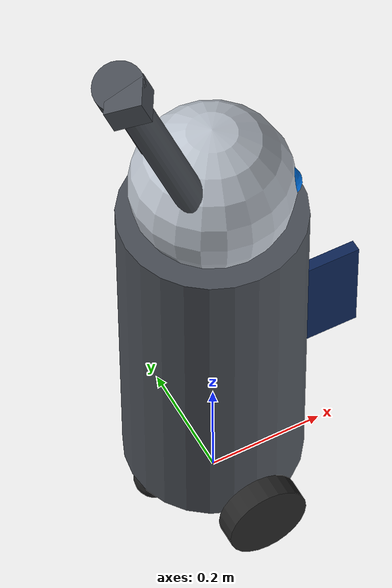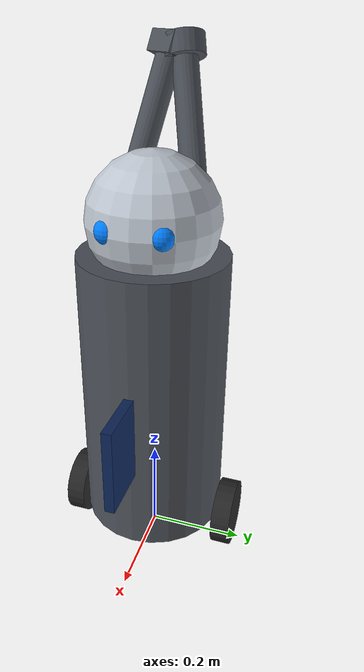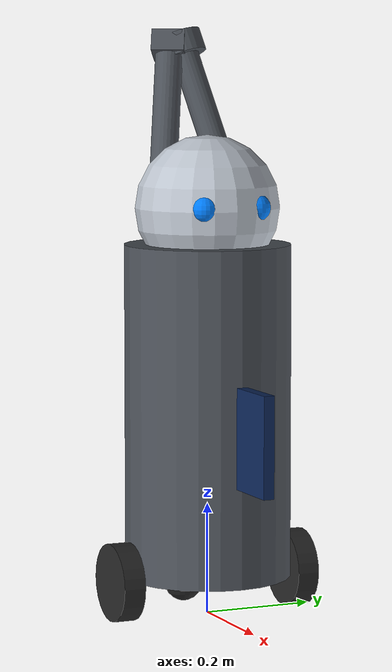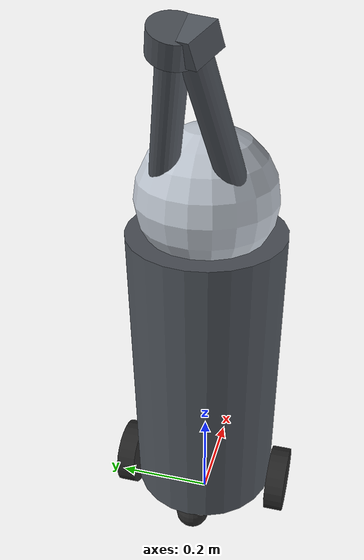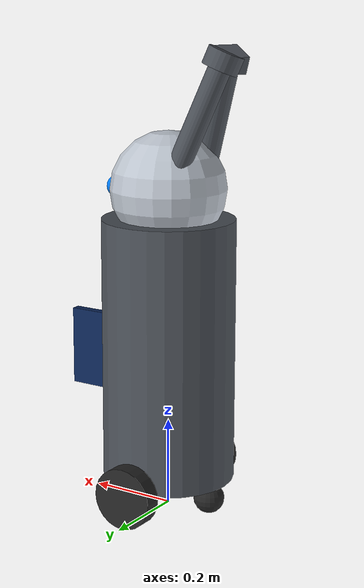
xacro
<?xml version="1.0"?>
<robot xmlns:xacro="http://www.ros.org/wiki/xacro" name="pluto">

  <!-- Constants -->
  <xacro:property name="body_radius" value="0.15"/>
  <xacro:property name="body_height" value="0.60"/>
  <xacro:property name="wheel_radius" value="0.07"/>
  <xacro:property name="wheel_width" value="0.04"/>
  <xacro:property name="wheel_separation" value="0.34"/>
  <xacro:property name="horn_length" value="0.25"/>
  <xacro:property name="horn_radius" value="0.025"/>

  <!-- Materials -->
  <material name="dark_metal">
    <color rgba="0.3 0.32 0.35 1.0"/>
  </material>
  <material name="silver_metal">
    <color rgba="0.75 0.78 0.82 1.0"/>
  </material>
  <material name="eye_default">
    <color rgba="0.0 0.5 1.0 1.0"/>
  </material>
  <material name="wheel_mat">
    <color rgba="0.15 0.15 0.15 1.0"/>
  </material>
  <material name="chest_panel">
    <color rgba="0.05 0.15 0.35 0.9"/>
  </material>

  <!-- =============================== BASE LINK =============================== -->
  <link name="base_footprint"/>

  <joint name="base_joint" type="fixed">
    <parent link="base_footprint"/>
    <child link="base_link"/>
    <origin xyz="0 0 ${wheel_radius}" rpy="0 0 0"/>
  </joint>

  <!-- Main body -->
  <link name="base_link">
    <visual>
      <origin xyz="0 0 ${body_height/2}" rpy="0 0 0"/>
      <geometry>
        <cylinder radius="${body_radius}" length="${body_height}"/>
      </geometry>
      <material name="dark_metal"/>
    </visual>
    <collision>
      <origin xyz="0 0 ${body_height/2}" rpy="0 0 0"/>
      <geometry>
        <cylinder radius="${body_radius}" length="${body_height}"/>
      </geometry>
    </collision>
    <inertial>
      <mass value="10.0"/>
      <inertia ixx="0.35" iyy="0.35" izz="0.12" ixy="0" ixz="0" iyz="0"/>
    </inertial>
  </link>

  <!-- Chest panel display -->
  <link name="chest_panel">
    <visual>
      <origin xyz="0 0 0" rpy="0 0 0"/>
      <geometry>
        <box size="0.22 0.02 0.18"/>
      </geometry>
      <material name="chest_panel"/>
    </visual>
    <inertial>
      <mass value="0.1"/>
      <inertia ixx="0.001" iyy="0.001" izz="0.001" ixy="0" ixz="0" iyz="0"/>
    </inertial>
  </link>

  <joint name="chest_panel_joint" type="fixed">
    <parent link="base_link"/>
    <child link="chest_panel"/>
    <origin xyz="${body_radius} 0 ${body_height * 0.45}" rpy="0 0 0"/>
  </joint>

  <!-- =============================== HEAD =============================== -->
  <link name="head_link">
    <visual>
      <origin xyz="0 0 0.065" rpy="0 0 0"/>
      <geometry>
        <sphere radius="0.13"/>
      </geometry>
      <material name="silver_metal"/>
    </visual>
    <collision>
      <origin xyz="0 0 0.065" rpy="0 0 0"/>
      <geometry>
        <sphere radius="0.13"/>
      </geometry>
    </collision>
    <inertial>
      <mass value="1.0"/>
      <inertia ixx="0.01" iyy="0.01" izz="0.01" ixy="0" ixz="0" iyz="0"/>
    </inertial>
  </link>

  <joint name="head_joint" type="fixed">
    <parent link="base_link"/>
    <child link="head_link"/>
    <origin xyz="0 0 ${body_height}" rpy="0 0 0"/>
  </joint>

  <!-- =============================== HORNS =============================== -->
  <!-- Left horn (LiDAR mount) -->
  <link name="left_horn">
    <visual>
      <origin xyz="0 0 ${horn_length/2}" rpy="0 0 0"/>
      <geometry>
        <cylinder radius="${horn_radius}" length="${horn_length}"/>
      </geometry>
      <material name="dark_metal"/>
    </visual>
    <collision>
      <origin xyz="0 0 ${horn_length/2}" rpy="0 0 0"/>
      <geometry>
        <cylinder radius="${horn_radius}" length="${horn_length}"/>
      </geometry>
    </collision>
    <inertial>
      <mass value="0.2"/>
      <inertia ixx="0.001" iyy="0.001" izz="0.0001" ixy="0" ixz="0" iyz="0"/>
    </inertial>
  </link>

  <joint name="left_horn_joint" type="fixed">
    <parent link="head_link"/>
    <child link="left_horn"/>
    <origin xyz="-0.06 0.06 0.12" rpy="0 ${-pi/8} ${pi/6}"/>
  </joint>

  <!-- Right horn (Camera mount) -->
  <link name="right_horn">
    <visual>
      <origin xyz="0 0 ${horn_length/2}" rpy="0 0 0"/>
      <geometry>
        <cylinder radius="${horn_radius}" length="${horn_length}"/>
      </geometry>
      <material name="dark_metal"/>
    </visual>
    <collision>
      <origin xyz="0 0 ${horn_length/2}" rpy="0 0 0"/>
      <geometry>
        <cylinder radius="${horn_radius}" length="${horn_length}"/>
      </geometry>
    </collision>
    <inertial>
      <mass value="0.2"/>
      <inertia ixx="0.001" iyy="0.001" izz="0.0001" ixy="0" ixz="0" iyz="0"/>
    </inertial>
  </link>

  <joint name="right_horn_joint" type="fixed">
    <parent link="head_link"/>
    <child link="right_horn"/>
    <origin xyz="-0.06 -0.06 0.12" rpy="0 ${-pi/8} ${-pi/6}"/>
  </joint>

  <!-- =============================== EYES =============================== -->
  <link name="left_eye">
    <visual>
      <origin xyz="0 0 0" rpy="0 0 0"/>
      <geometry>
        <sphere radius="0.025"/>
      </geometry>
      <material name="eye_default"/>
    </visual>
    <inertial>
      <mass value="0.05"/>
      <inertia ixx="0.0001" iyy="0.0001" izz="0.0001" ixy="0" ixz="0" iyz="0"/>
    </inertial>
  </link>

  <joint name="left_eye_joint" type="fixed">
    <parent link="head_link"/>
    <child link="left_eye"/>
    <origin xyz="0.10 0.05 0.07" rpy="0 0 0"/>
  </joint>

  <link name="right_eye">
    <visual>
      <origin xyz="0 0 0" rpy="0 0 0"/>
      <geometry>
        <sphere radius="0.025"/>
      </geometry>
      <material name="eye_default"/>
    </visual>
    <inertial>
      <mass value="0.05"/>
      <inertia ixx="0.0001" iyy="0.0001" izz="0.0001" ixy="0" ixz="0" iyz="0"/>
    </inertial>
  </link>

  <joint name="right_eye_joint" type="fixed">
    <parent link="head_link"/>
    <child link="right_eye"/>
    <origin xyz="0.10 -0.05 0.07" rpy="0 0 0"/>
  </joint>

  <!-- =============================== WHEELS =============================== -->
  <!-- Left wheel -->
  <link name="left_wheel">
    <visual>
      <origin xyz="0 0 0" rpy="${pi/2} 0 0"/>
      <geometry>
        <cylinder radius="${wheel_radius}" length="${wheel_width}"/>
      </geometry>
      <material name="wheel_mat"/>
    </visual>
    <collision>
      <origin xyz="0 0 0" rpy="${pi/2} 0 0"/>
      <geometry>
        <cylinder radius="${wheel_radius}" length="${wheel_width}"/>
      </geometry>
    </collision>
    <inertial>
      <mass value="0.8"/>
      <inertia ixx="0.002" iyy="0.002" izz="0.004" ixy="0" ixz="0" iyz="0"/>
    </inertial>
  </link>

  <joint name="left_wheel_joint" type="continuous">
    <parent link="base_link"/>
    <child link="left_wheel"/>
    <origin xyz="0 ${wheel_separation/2} 0" rpy="0 0 0"/>
    <axis xyz="0 1 0"/>
  </joint>

  <!-- Right wheel -->
  <link name="right_wheel">
    <visual>
      <origin xyz="0 0 0" rpy="${pi/2} 0 0"/>
      <geometry>
        <cylinder radius="${wheel_radius}" length="${wheel_width}"/>
      </geometry>
      <material name="wheel_mat"/>
    </visual>
    <collision>
      <origin xyz="0 0 0" rpy="${pi/2} 0 0"/>
      <geometry>
        <cylinder radius="${wheel_radius}" length="${wheel_width}"/>
      </geometry>
    </collision>
    <inertial>
      <mass value="0.8"/>
      <inertia ixx="0.002" iyy="0.002" izz="0.004" ixy="0" ixz="0" iyz="0"/>
    </inertial>
  </link>

  <joint name="right_wheel_joint" type="continuous">
    <parent link="base_link"/>
    <child link="right_wheel"/>
    <origin xyz="0 ${-wheel_separation/2} 0" rpy="0 0 0"/>
    <axis xyz="0 1 0"/>
  </joint>

  <!-- Caster wheel (passive) -->
  <link name="caster_wheel">
    <visual>
      <origin xyz="0 0 0" rpy="0 0 0"/>
      <geometry>
        <sphere radius="${wheel_radius/2}"/>
      </geometry>
      <material name="wheel_mat"/>
    </visual>
    <collision>
      <origin xyz="0 0 0" rpy="0 0 0"/>
      <geometry>
        <sphere radius="${wheel_radius/2}"/>
      </geometry>
    </collision>
    <inertial>
      <mass value="0.2"/>
      <inertia ixx="0.0003" iyy="0.0003" izz="0.0003" ixy="0" ixz="0" iyz="0"/>
    </inertial>
  </link>

  <joint name="caster_joint" type="fixed">
    <parent link="base_link"/>
    <child link="caster_wheel"/>
    <origin xyz="${-body_radius + 0.04} 0 ${-wheel_radius/2}" rpy="0 0 0"/>
  </joint>

  <!-- =============================== SENSORS =============================== -->
  <!-- LiDAR frame (on left horn tip) -->
  <link name="lidar_link">
    <visual>
      <origin xyz="0 0 0" rpy="0 0 0"/>
      <geometry>
        <cylinder radius="0.04" length="0.04"/>
      </geometry>
      <material name="dark_metal"/>
    </visual>
    <inertial>
      <mass value="0.3"/>
      <inertia ixx="0.001" iyy="0.001" izz="0.001" ixy="0" ixz="0" iyz="0"/>
    </inertial>
  </link>

  <joint name="lidar_joint" type="fixed">
    <parent link="left_horn"/>
    <child link="lidar_link"/>
    <origin xyz="0 0 ${horn_length}" rpy="0 0 0"/>
  </joint>

  <!-- Camera frame (on right horn tip) -->
  <link name="camera_link">
    <visual>
      <origin xyz="0 0 0" rpy="0 0 0"/>
      <geometry>
        <box size="0.06 0.06 0.04"/>
      </geometry>
      <material name="dark_metal"/>
    </visual>
    <inertial>
      <mass value="0.1"/>
      <inertia ixx="0.0001" iyy="0.0001" izz="0.0001" ixy="0" ixz="0" iyz="0"/>
    </inertial>
  </link>

  <joint name="camera_joint" type="fixed">
    <parent link="right_horn"/>
    <child link="camera_link"/>
    <origin xyz="0 0 ${horn_length}" rpy="0 0 0"/>
  </joint>

  <!-- IMU link -->
  <link name="imu_link">
    <inertial>
      <mass value="0.01"/>
      <inertia ixx="0.00001" iyy="0.00001" izz="0.00001" ixy="0" ixz="0" iyz="0"/>
    </inertial>
  </link>

  <joint name="imu_joint" type="fixed">
    <parent link="base_link"/>
    <child link="imu_link"/>
    <origin xyz="0 0 ${body_height/2}" rpy="0 0 0"/>
  </joint>

  <!-- =============================== GAZEBO PLUGINS =============================== -->
  <gazebo>
    <plugin name="diff_drive" filename="libgazebo_ros_diff_drive.so">
      <left_joint>left_wheel_joint</left_joint>
      <right_joint>right_wheel_joint</right_joint>
      <wheel_separation>${wheel_separation}</wheel_separation>
      <wheel_diameter>${wheel_radius * 2}</wheel_diameter>
      <max_wheel_torque>20</max_wheel_torque>
      <max_wheel_acceleration>1.0</max_wheel_acceleration>
      <odometry_topic>odom</odometry_topic>
      <command_topic>cmd_vel</command_topic>
      <publish_odom>true</publish_odom>
      <publish_odom_tf>true</publish_odom_tf>
      <publish_wheel_tf>true</publish_wheel_tf>
    </plugin>
  </gazebo>

  <gazebo reference="lidar_link">
    <sensor name="lidar" type="ray">
      <always_on>true</always_on>
      <visualize>true</visualize>
      <update_rate>10</update_rate>
      <ray>
        <scan>
          <horizontal>
            <samples>360</samples>
            <resolution>1</resolution>
            <min_angle>-${pi}</min_angle>
            <max_angle>${pi}</max_angle>
          </horizontal>
        </scan>
        <range>
          <min>0.12</min>
          <max>12.0</max>
          <resolution>0.01</resolution>
        </range>
        <noise>
          <type>gaussian</type>
          <mean>0.0</mean>
          <stddev>0.01</stddev>
        </noise>
      </ray>
      <plugin name="laser_controller" filename="libgazebo_ros_ray_sensor.so">
        <topicName>scan</topicName>
        <frameName>lidar_link</frameName>
      </plugin>
    </sensor>
  </gazebo>

  <gazebo reference="imu_link">
    <sensor name="imu" type="imu">
      <always_on>true</always_on>
      <update_rate>100</update_rate>
      <plugin name="imu_plugin" filename="libgazebo_ros_imu_sensor.so">
        <topicName>imu</topicName>
        <frameName>imu_link</frameName>
      </plugin>
    </sensor>
  </gazebo>

  <!-- Body color in Gazebo -->
  <gazebo reference="base_link">
    <material>Gazebo/DarkGrey</material>
  </gazebo>
  <gazebo reference="head_link">
    <material>Gazebo/Grey</material>
  </gazebo>
  <gazebo reference="left_eye">
    <material>Gazebo/Blue</material>
  </gazebo>
  <gazebo reference="right_eye">
    <material>Gazebo/Blue</material>
  </gazebo>

</robot>
